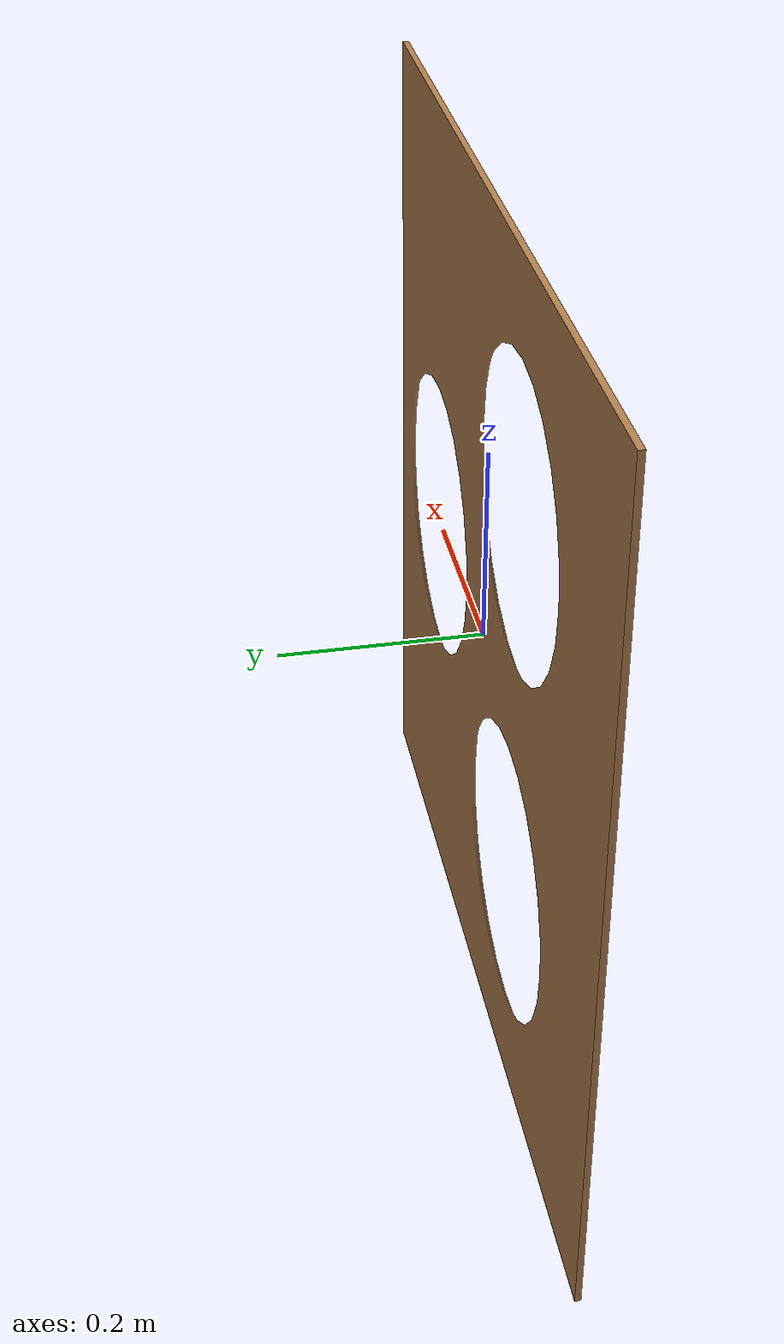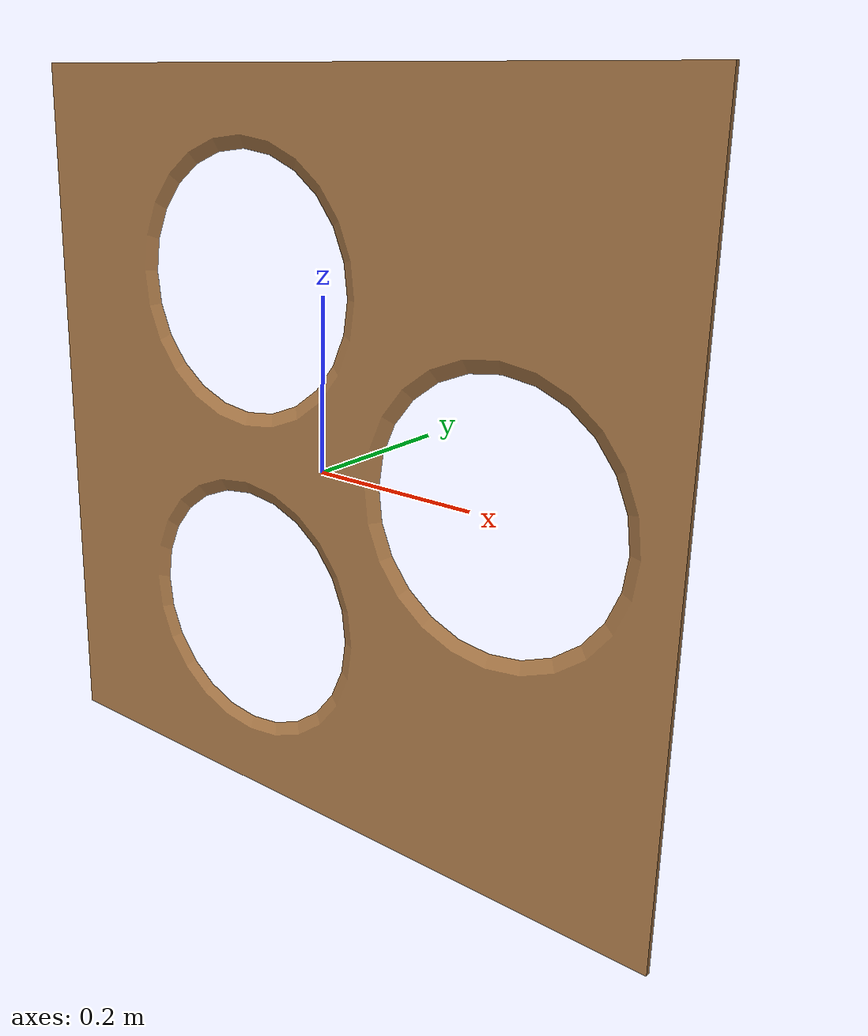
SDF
<?xml version="1.0" ?>
<sdf version="1.6">
<model name="our_board">
	<static>true</static>
	<pose>0 0 0 1.5707963267949 0 0</pose>
	<link name="link">
		<inertial>
			<pose>-3.6662E-16 -0.0029588 -1.09668831736016E-16 0 0 0</pose>
			<mass>1.5889</mass>
			<inertia>
				<ixx>0.1243</ixx>
				<ixy>2.3621E-18</ixy>
				<ixz>2.4903E-18</ixz>
				<iyy>0.2486</iyy>
				<iyz>-7.61689668900607E-18</iyz>
				<izz>0.1243</izz>
			</inertia>
		</inertial>

		<collision name="collision">
			<geometry>
			  <mesh>
				<uri>model://our_board/meshes/our_board.STL</uri>
			  </mesh>
			</geometry>
		</collision>

		<visual name="visual">
			<geometry>
			  <mesh>
				<uri>model://our_board/meshes/our_board.STL</uri>
			  </mesh>
			</geometry>
			<material>
				<script>
					<uri>file://media/materials/scripts/gazebo.material</uri>
					<name>Gazebo/Wood</name>
				</script>
			</material>
		</visual>
    </link>
  </model>
</sdf>
